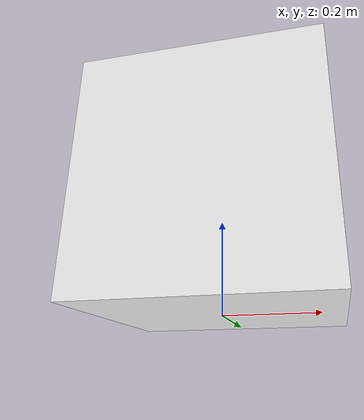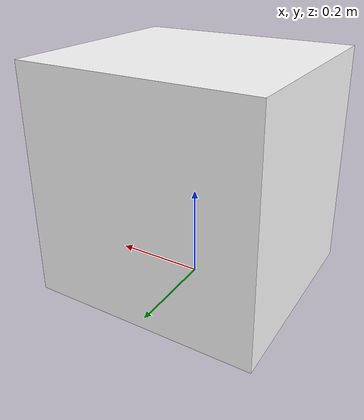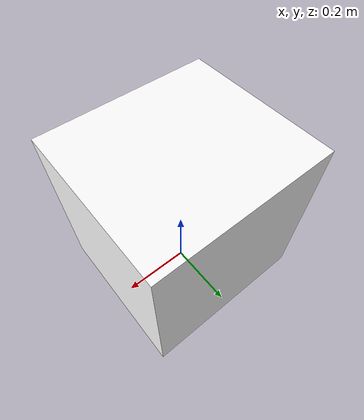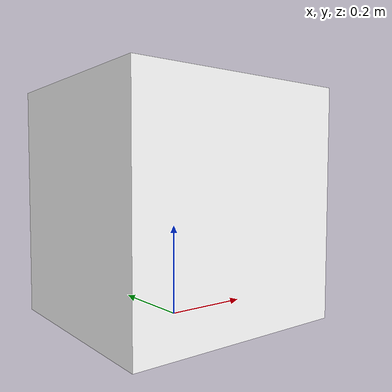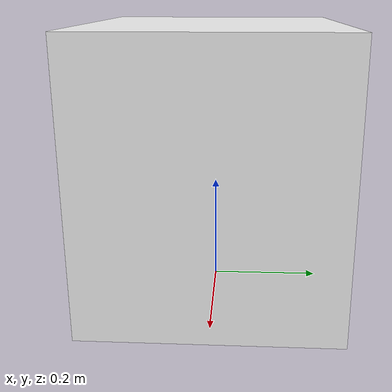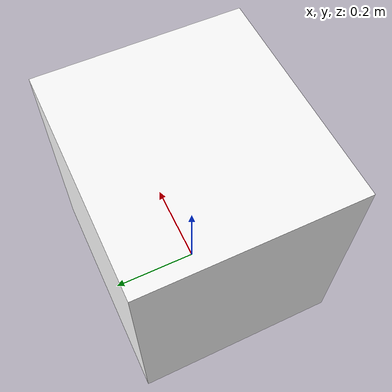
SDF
<sdf version="1.6">
    <model name="night_table">
        <static>true</static>
        <!-- Body of the night table -->
        <link name="plate">
            <pose>0 0 0.25 0 0 0</pose>
            <visual name="visual_plate">
                <geometry>
                    <box>
                        <size>0.495 0.45 0.5</size>
                    </box>
                </geometry>
                <material>
                    <ambient>1 1 1 1</ambient> <!-- White color, fully opaque -->
                </material>
            </visual>
            <collision name="collision_plate">
                <geometry>
                    <box>
                        <size>0.495 0.45 0.5</size>
                    </box>
                </geometry>
            </collision>
        </link>
    </model>
</sdf>
